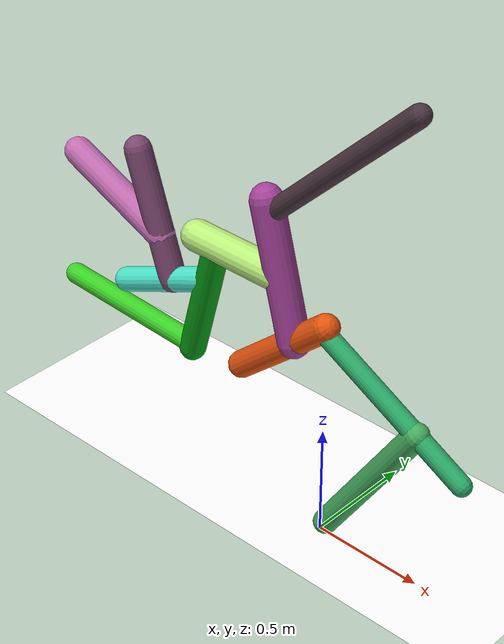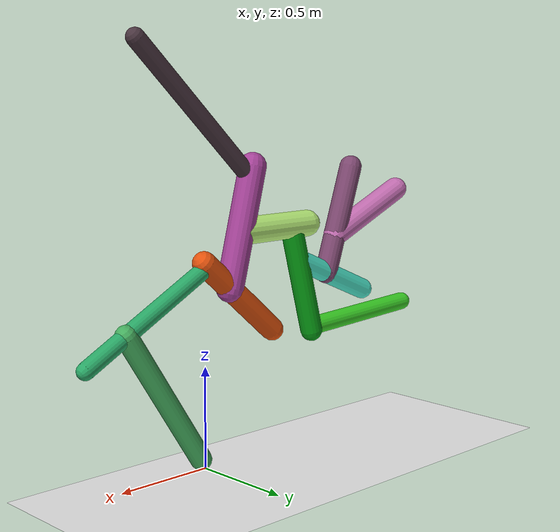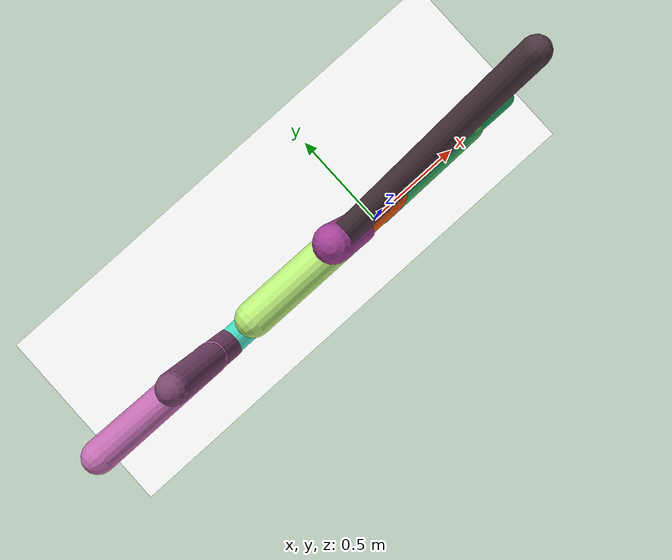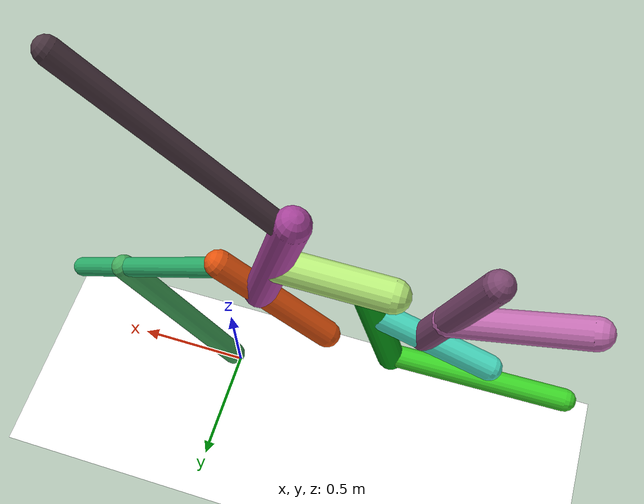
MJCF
<mujoco model="morphology">
  <option timestep="0.01"/>
  <default>
    <default class="/"/>
  </default>
  <asset>
    <texture name="texplane" type="2d" builtin="checker" rgb1="0.1 0.2 0.3" rgb2="0.2 0.3 0.4" width="300" height="300"/>
    <material name="MatPlane" class="/" texture="texplane" texrepeat="20 20" specular="1" shininess="1" reflectance="0.5"/>
  </asset>
  <worldbody>
    <light name="//unnamed_light_0" class="/" directional="true" pos="0 0 1.5" dir="0 0 -1.3" cutoff="1e+02" exponent="1" diffuse="1 1 1" specular="0.1 0.1 0.1"/>
    <geom name="ground" class="/" type="plane" size="15 15 0.5" material="MatPlane" rgba="1 1 1 1"/>
    <body name="body" pos="0 0 1">
      <geom name="geom0" class="/" type="capsule" contype="1" conaffinity="1" condim="3" size="0.058" rgba="0.9 0.33 0.055 1" friction="0.4 0.1 0.1" fromto="0 0 0 -0.44 0 -0.38"/>
      <body name="body1" pos="-0.16 0 -0.14">
        <geom name="geom1" class="/" type="capsule" contype="1" conaffinity="1" condim="3" size="0.068" rgba="0.65 0.26 0.6 1" friction="0.4 0.1 0.1" fromto="0 0 0 -0.15 0 0.58"/>
        <body name="body2" pos="-0.14 0 0.52">
          <geom name="geom2" class="/" type="capsule" contype="1" conaffinity="1" condim="3" size="0.044" rgba="0.29 0.21 0.25 1" friction="0.4 0.1 0.1" fromto="0 0 0 0.68 0 0.65"/>
          <joint name="joint2" class="/" type="hinge" axis="0 1 0" limited="true" stiffness="20" range="-34 34" armature="0.1" damping="2"/>
        </body>
        <body name="body3" pos="-0.073 0 0.27">
          <geom name="geom3" class="/" type="capsule" contype="1" conaffinity="1" condim="3" size="0.068" rgba="0.73 0.94 0.48 1" friction="0.4 0.1 0.1" fromto="0 0 0 -0.45 0 0.0024"/>
          <body name="body4" pos="-0.34 0 0.0018">
            <geom name="geom4" class="/" type="capsule" contype="1" conaffinity="1" condim="3" size="0.057" rgba="0.031 0.6 0.082 1" friction="0.4 0.1 0.1" fromto="0 0 0 -0.15 0 -0.56"/>
            <body name="body5" pos="-0.14 0 -0.54">
              <geom name="geom5" class="/" type="capsule" contype="1" conaffinity="1" condim="3" size="0.047" rgba="0.23 0.82 0.15 1" friction="0.4 0.1 0.1" fromto="0 0 0 -0.73 0 0.037"/>
            </body>
            <body name="body6" pos="-0.047 0 -0.18">
              <geom name="geom6" class="/" type="capsule" contype="1" conaffinity="1" condim="3" size="0.054" rgba="0.3 0.91 0.8 1" friction="0.4 0.1 0.1" fromto="0 0 0 -0.49 0 -0.21"/>
              <body name="body7" pos="-0.21 0 -0.089">
                <geom name="geom7" class="/" type="capsule" contype="1" conaffinity="1" condim="3" size="0.058" rgba="0.49 0.28 0.44 1" friction="0.4 0.1 0.1" fromto="0 0 0 -0.18 0 0.54"/>
                <body name="body8" pos="-0.065 0 0.19">
                  <geom name="geom8" class="/" type="capsule" contype="1" conaffinity="1" condim="3" size="0.061" rgba="0.77 0.43 0.7 1" friction="0.4 0.1 0.1" fromto="0 0 0 -0.48 0 0.21"/>
                  <joint name="joint8" class="/" type="hinge" axis="0 1 0" limited="true" stiffness="20" range="-47 47" armature="0.1" damping="2"/>
                </body>
                <joint name="joint7" class="/" type="hinge" axis="0 1 0" limited="true" stiffness="20" range="-49 49" armature="0.1" damping="2"/>
              </body>
              <joint name="joint6" class="/" type="hinge" axis="0 1 0" limited="true" stiffness="20" range="-38 38" armature="0.1" damping="2"/>
            </body>
            <joint name="joint4" class="/" type="hinge" axis="0 1 0" limited="true" stiffness="20" range="-55 55" armature="0.1" damping="2"/>
          </body>
          <joint name="joint3" class="/" type="hinge" axis="0 1 0" limited="true" stiffness="20" range="-49 49" armature="0.1" damping="2"/>
        </body>
        <joint name="joint1" class="/" type="hinge" axis="0 1 0" limited="true" stiffness="20" range="-69 69" armature="0.1" damping="2"/>
      </body>
      <body name="body9" pos="-0.021 0 -0.018">
        <geom name="geom9" class="/" type="capsule" contype="1" conaffinity="1" condim="3" size="0.042" rgba="0.16 0.66 0.4 1" friction="0.4 0.1 0.1" fromto="0 0 0 0.7 0 -0.38"/>
        <body name="body10" pos="0.48 0 -0.26">
          <geom name="geom10" class="/" type="capsule" contype="1" conaffinity="1" condim="3" size="0.053" rgba="0.27 0.68 0.37 1" friction="0.4 0.1 0.1" fromto="0 0 0 -0.43 0 -0.67"/>
          <joint name="joint10" class="/" type="hinge" axis="0 1 0" limited="true" stiffness="20" range="-43 43" armature="0.1" damping="2"/>
        </body>
        <joint name="joint9" class="/" type="hinge" axis="0 1 0" limited="true" stiffness="20" range="-63 63" armature="0.1" damping="2"/>
      </body>
      <joint name="rootx" class="/" type="slide" axis="1 0 0" limited="false" stiffness="0" armature="0" damping="0"/>
      <joint name="rootz" class="/" type="slide" axis="0 0 1" limited="false" stiffness="0" armature="0" damping="0"/>
      <joint name="rooty" class="/" type="hinge" axis="0 1 0" limited="false" stiffness="0" armature="0" damping="0"/>
    </body>
  </worldbody>
  <actuator>
    <motor name="motor2" class="/" ctrllimited="true" ctrlrange="-1 1" gear="1.6e+02" joint="joint2"/>
    <motor name="motor8" class="/" ctrllimited="true" ctrlrange="-1 1" gear="1.4e+02" joint="joint8"/>
    <motor name="motor7" class="/" ctrllimited="true" ctrlrange="-1 1" gear="1.1e+02" joint="joint7"/>
    <motor name="motor6" class="/" ctrllimited="true" ctrlrange="-1 1" gear="1.4e+02" joint="joint6"/>
    <motor name="motor4" class="/" ctrllimited="true" ctrlrange="-1 1" gear="1.8e+02" joint="joint4"/>
    <motor name="motor3" class="/" ctrllimited="true" ctrlrange="-1 1" gear="2e+02" joint="joint3"/>
    <motor name="motor1" class="/" ctrllimited="true" ctrlrange="-1 1" gear="1.5e+02" joint="joint1"/>
    <motor name="motor10" class="/" ctrllimited="true" ctrlrange="-1 1" gear="1.8e+02" joint="joint10"/>
    <motor name="motor9" class="/" ctrllimited="true" ctrlrange="-1 1" gear="1.5e+02" joint="joint9"/>
  </actuator>
  <sensor>
    <subtreelinvel name="velocity" body="body"/>
  </sensor>
</mujoco>
